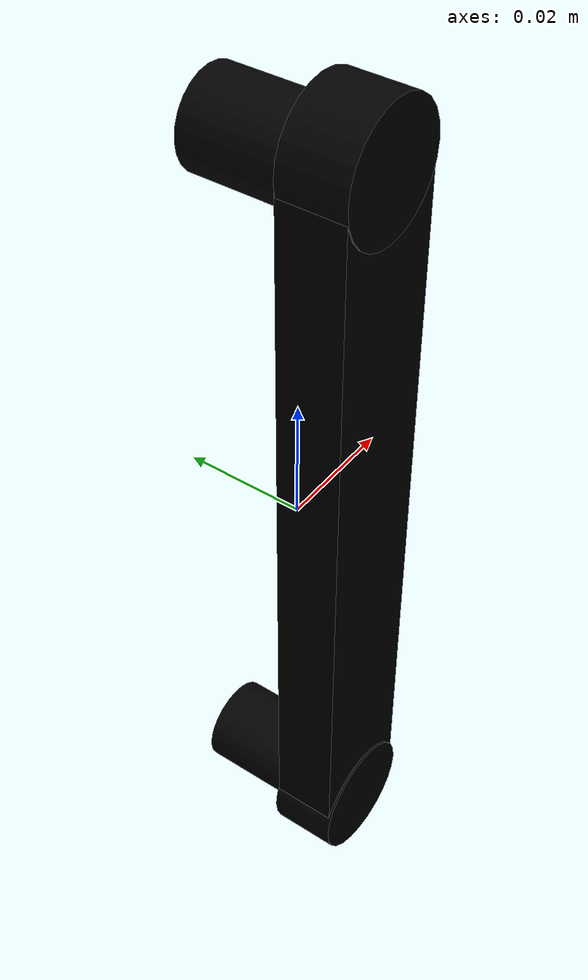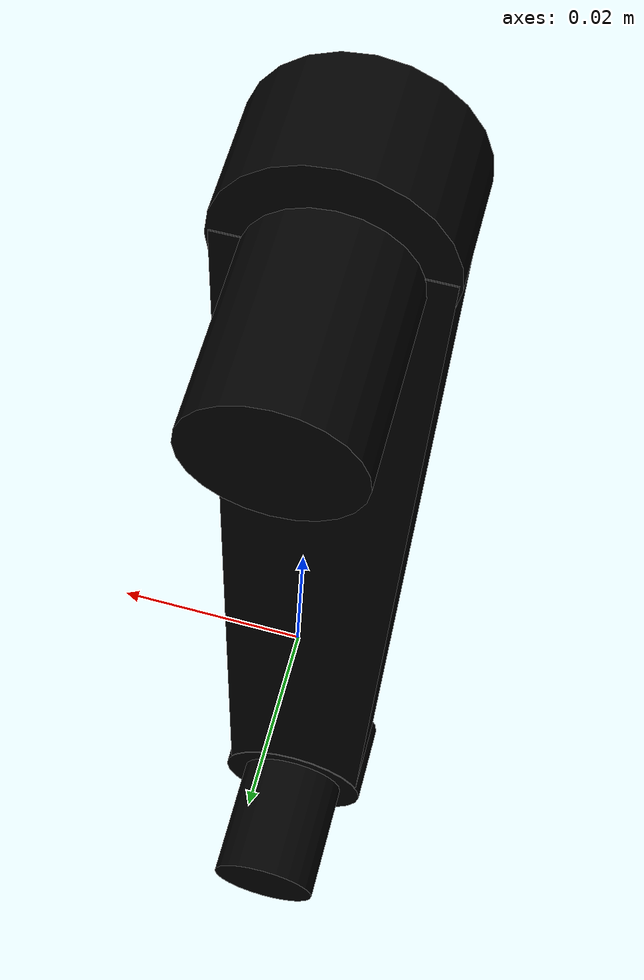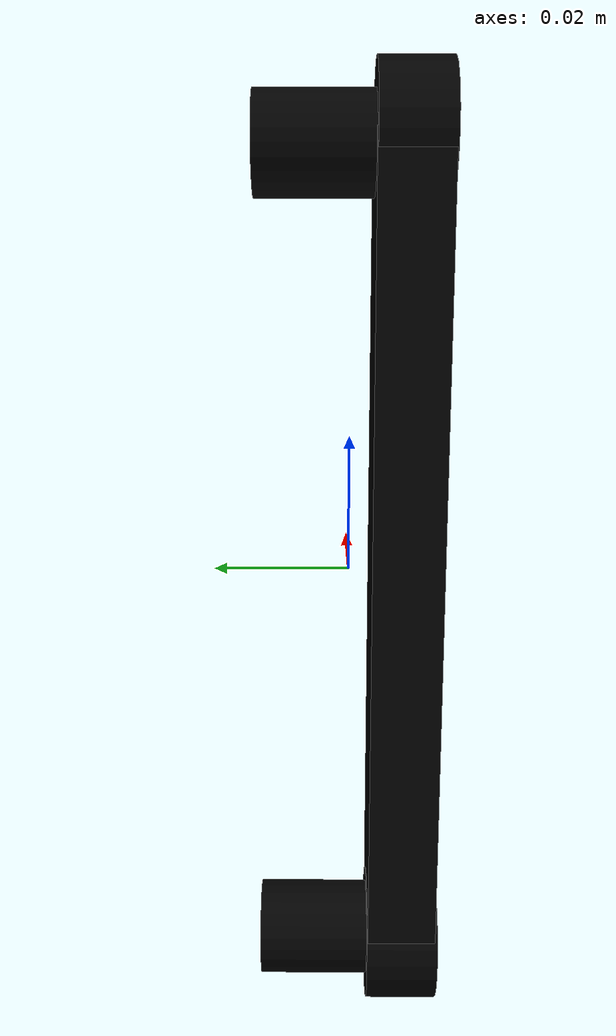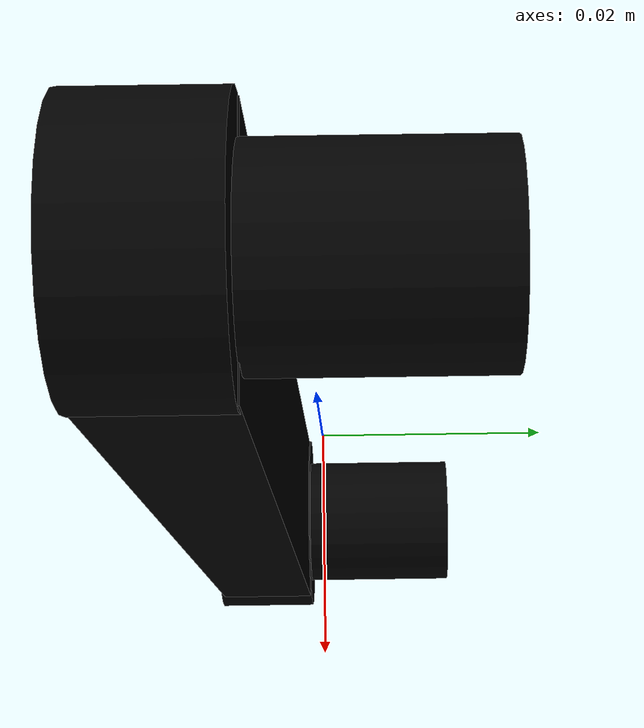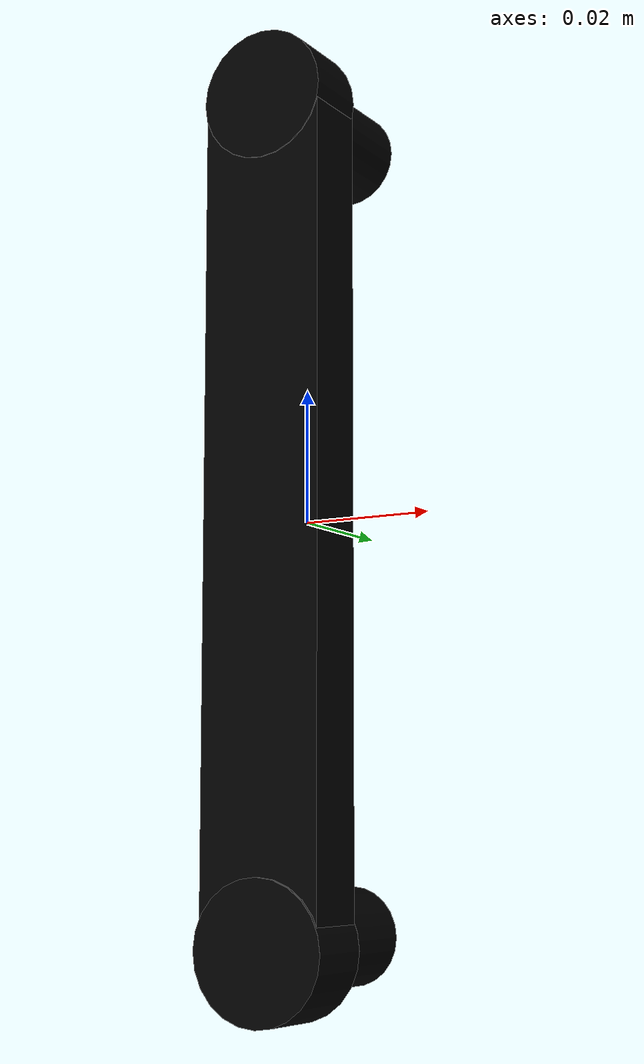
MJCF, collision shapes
<?xml version="1.0" ?>
<mujoco model="model">
    <compiler angle="radian"/>
    <asset>
        <mesh file="visuals/CabinetHandle048.obj" name="mesh"/>
        <texture file="visuals/T_BC001.png" name="tex" type="2d"/>
        <material name="mat" rgba="1 1 1 1.0" texture="tex" shininess="8" specular="8"/>
    </asset>
    <default>
        <default class="visual">
            <geom conaffinity="0" contype="0" group="1" type="mesh"/>
        </default>
        <default class="collision">
            <geom group="0" rgba="0 0 0 0"/>
        </default>
        <default class="spawn">
            <geom group="0" rgba="0 0 0 0" contype="0" conaffinity="0"/>
            <site group="0" rgba="0 0 0 0"/>
        </default>
    </default>
    <worldbody>
        <body>
            <body name="object">
                <geom mesh="mesh" type="mesh" solimp="0.998 0.998 0.001" solref="0.001 1" density="100" friction="0.95 0.3 0.1" class="visual" material="mat"/>
                <geom class="collision" type="cylinder" pos="-1.3060257911468085e-17 0.005035910755395889 0.060754481703042984" size="0.007290620822459459 0.008538727648556232" quat="0.7071067094802856 0.7071068286895752 -1.5700929612083792e-16 2.2148510003422914e-23" name="handle_connector"/>
                <geom class="collision" type="cylinder" pos="-1.3060257911468085e-17 0.005035910755395889 -0.060692597180604935" size="0.007290620822459459 0.008538727648556232" quat="0.7071067094802856 0.7071068286895752 -1.5700929612083792e-16 2.2148510003422914e-23"/>
                <geom class="collision" type="cylinder" pos="-1.3060257911468085e-17 -0.00857498124241829 0.062452998012304306" size="0.009798000566661358 0.005262071266770363" quat="0.7071067094802856 0.7071068286895752 -1.5700929612083792e-16 2.2148510003422914e-23"/>
                <geom class="collision" type="cylinder" pos="-1.3060257911468085e-17 -0.00857498124241829 -0.061678048223257065" size="0.010246040299534798 0.005502693355083466" quat="0.7071067094802856 0.7071068286895752 -1.5700929612083792e-16 2.2148510003422914e-23"/>
                <geom class="collision" type="box" pos="0.0 -0.008438237011432648 0.0" size="0.009493873454630375 0.00523875467479229 0.06291710585355759" quat="1.0 0.0 0.0 0.0"/>
            </body>
        </body>
    </worldbody>
    <actuator/>
</mujoco>
